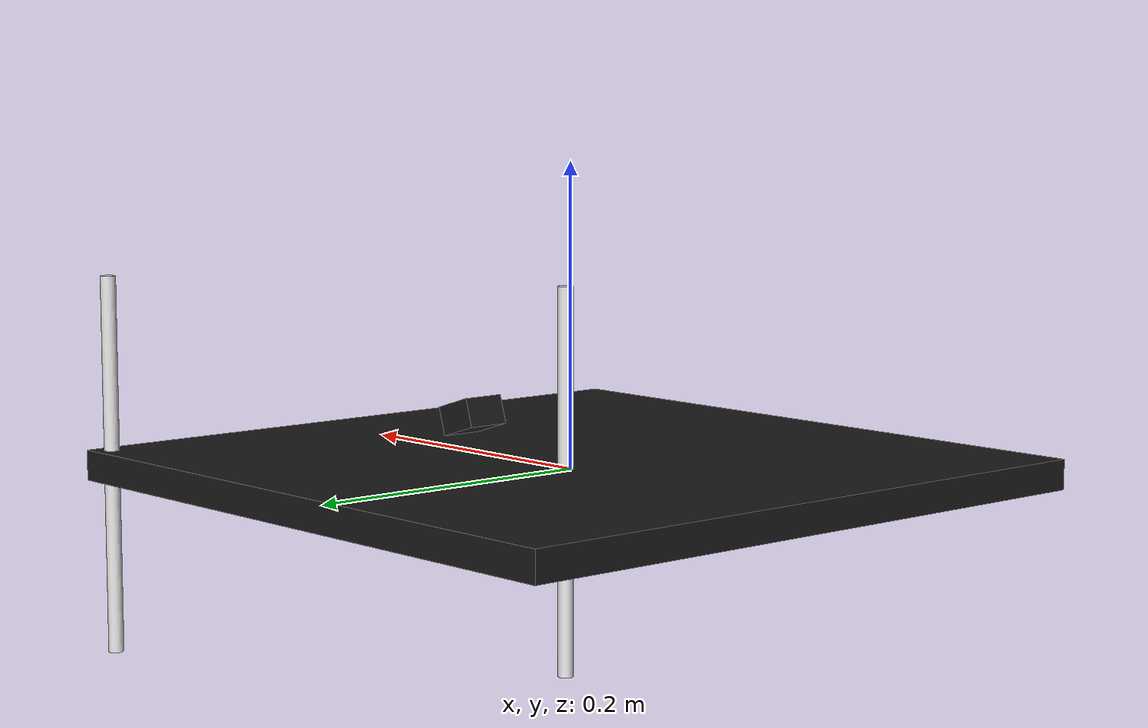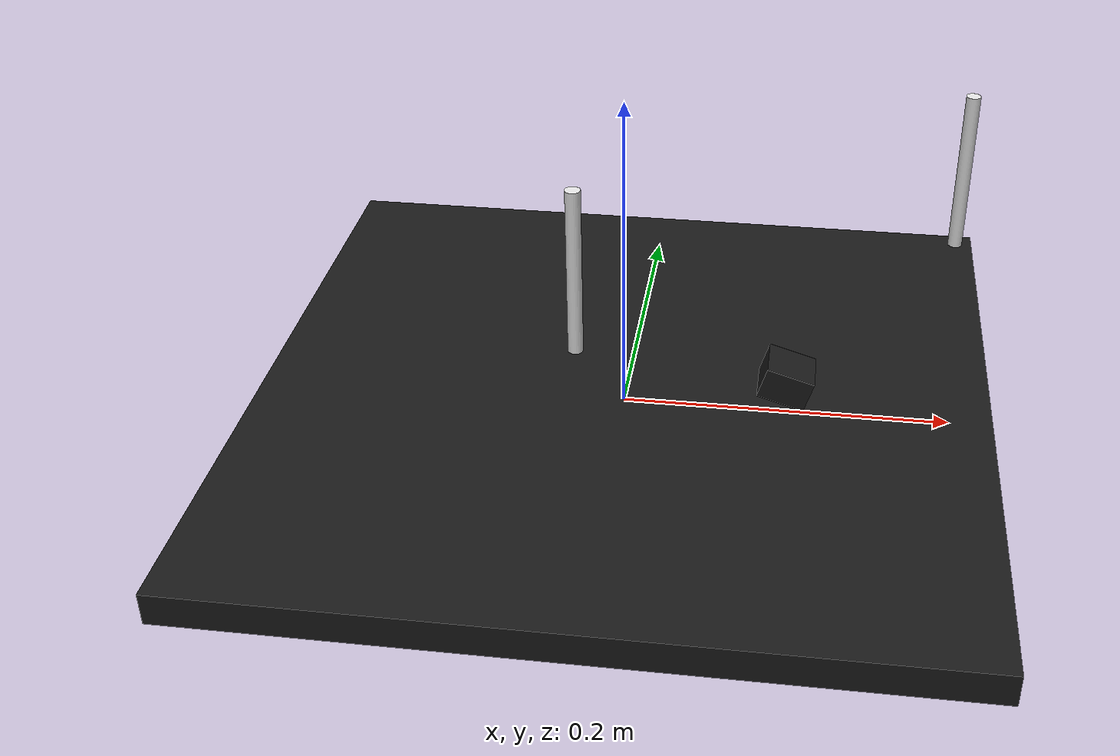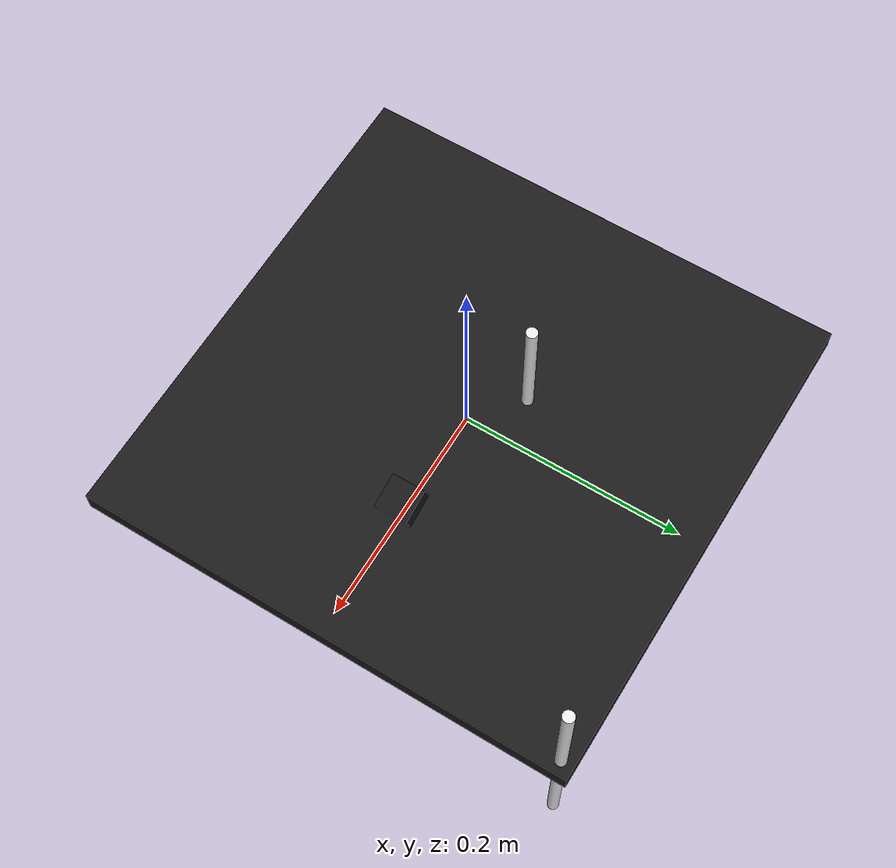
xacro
<?xml version="1.0"?>
<robot name="andino_drone" xmlns:xacro="http://www.ros.org/wiki/xacro">

  <!-- Materiales -->
  <material name="black">
    <color rgba="0.1 0.1 0.1 1.0"/>
  </material>
  <material name="white">
    <color rgba="0.9 0.9 0.9 1.0"/>
  </material>
  <material name="orange">
    <color rgba="1.0 0.5 0.0 1.0"/>
  </material>

  <!-- Base del frame -->
  <link name="base_link">
    <visual>
      <geometry>
        <box size="0.45 0.45 0.02"/>
      </geometry>
      <material name="black"/>
    </visual>
    <inertial>
      <mass value="0.5"/>
      <inertia ixx="0.01" iyy="0.01" izz="0.02" ixy="0.0" ixz="0.0" iyz="0.0"/>
    </inertial>
  </link>

  <!-- Brazos del frame (X config) -->
  <link name="arm_front_right">
    <visual>
      <geometry><cylinder radius="0.005" length="0.25"/></geometry>
      <origin xyz="0.125 0 0" rpy="0 0 0"/>
      <material name="white"/>
    </visual>
  </link>

  <link name="arm_front_left">
    <visual>
      <geometry><cylinder radius="0.005" length="0.25"/></geometry>
      <origin xyz="0.125 0 0" rpy="0 0 0"/>
      <material name="white"/>
    </visual>
  </link>

  <!-- Joints -->
  <joint name="joint_arm_fr" type="fixed">
    <parent link="base_link"/>
    <child link="arm_front_right"/>
    <origin xyz="0.125 0.125 0" rpy="0 0 0.785"/>
  </joint>

  <joint name="joint_arm_fl" type="fixed">
    <parent link="base_link"/>
    <child link="arm_front_left"/>
    <origin xyz="-0.125 0.125 0" rpy="0 0 -0.785"/>
  </joint>

  <!-- Cámara -->
  <link name="camera_link">
    <visual>
      <geometry><box size="0.03 0.03 0.02"/></geometry>
      <origin xyz="0 0 0"/>
      <material name="black"/>
    </visual>
  </link>

  <joint name="joint_camera" type="fixed">
    <parent link="base_link"/>
    <child link="camera_link"/>
    <origin xyz="0.1 0 0.025" rpy="0 0.3 0"/>
  </joint>

  <!-- Sensor IMU (simulado) -->
  <link name="imu_link"/>
  <joint name="joint_imu" type="fixed">
    <parent link="base_link"/>
    <child link="imu_link"/>
    <origin xyz="0 0 0"/>
  </joint>

  <!-- Gazebo plugins -->
  <gazebo>
    <plugin name="gazebo_ros_imu" filename="libgazebo_ros_imu.so">
      <ros>
        <namespace>/drone</namespace>
        <argument>~/imu</argument>
      </ros>
      <output>sensor_msgs/Imu</output>
    </plugin>
  </gazebo>

</robot>
